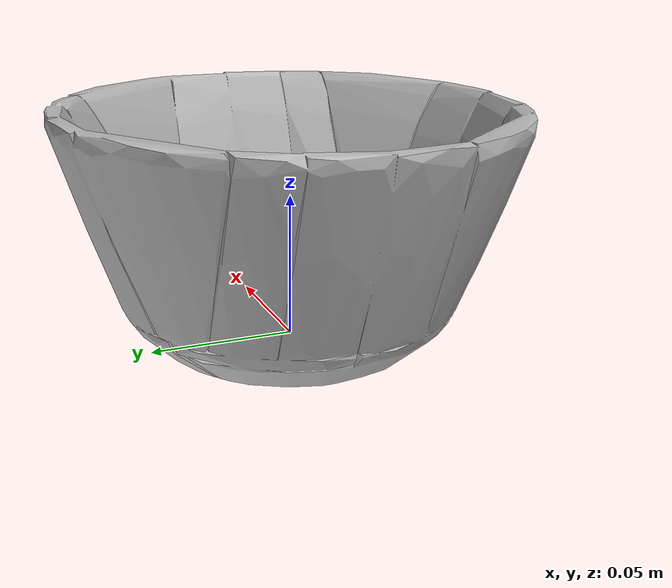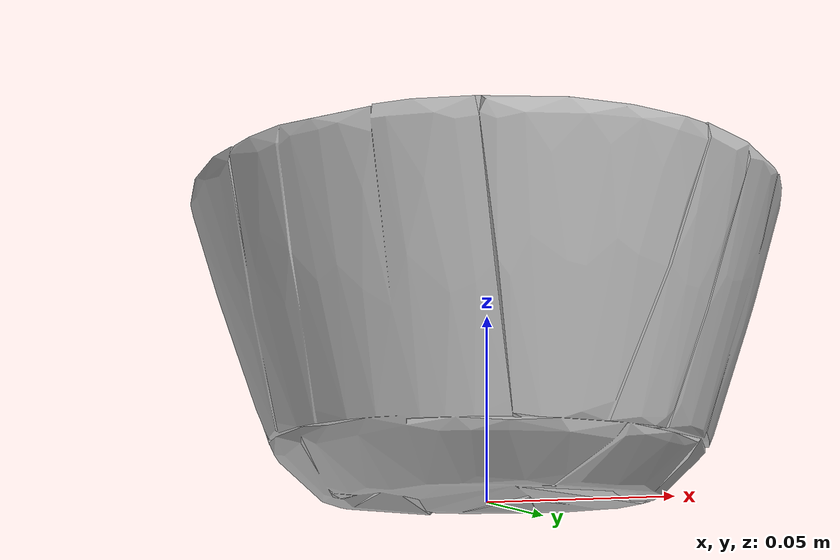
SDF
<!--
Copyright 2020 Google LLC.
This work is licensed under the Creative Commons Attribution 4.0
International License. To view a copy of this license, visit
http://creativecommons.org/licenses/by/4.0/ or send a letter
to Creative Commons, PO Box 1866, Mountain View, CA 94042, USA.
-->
<?xml version="1.0" ?>
<sdf version="1.6">
  <model name="Room_Essentials_Bowl_Turquiose">
    <link name="link_0">
      <visual name="visual">
        <geometry>
          <mesh>
            <uri>meshes/original_obj/model.obj</uri>
          </mesh>
        </geometry>
      </visual>
      <collision name="collision_0">
        <geometry>
          <mesh>
            <uri>meshes/model.obj</uri>
          </mesh>
        </geometry>
      </collision>
    </link>
  </model>
</sdf>
